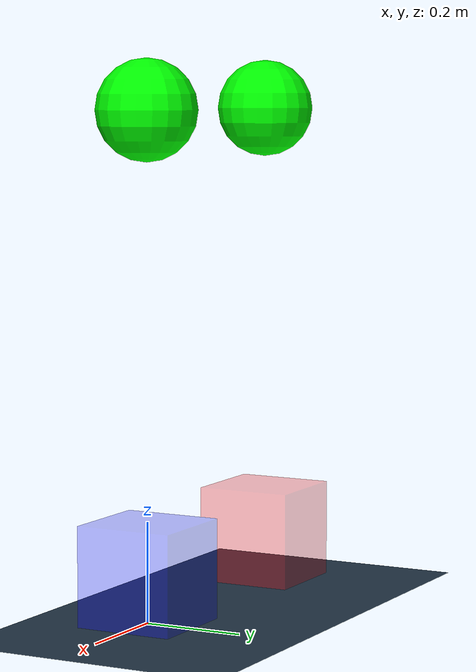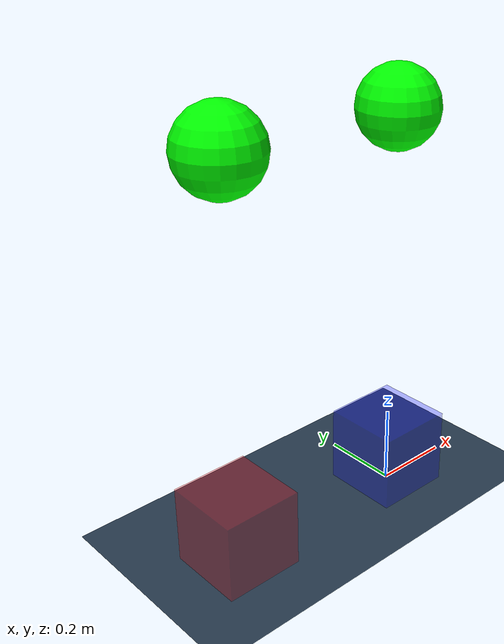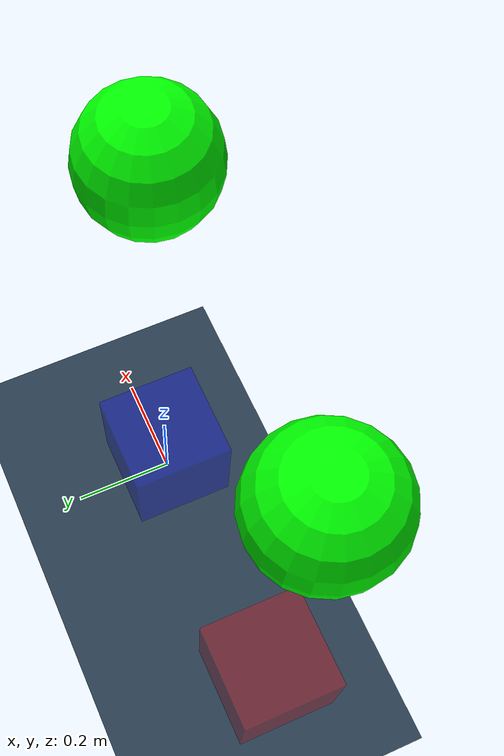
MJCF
<mujoco>
    <option gravity="0 0 -9.81" integrator="Euler" timestep="0.001"/>

    <asset>
      <texture name="plane" type="2d" builtin="checker" rgb1=".2 .3 .4" rgb2=".1 0.15 0.2" width="256" height="256" mark="cross" markrgb=".8 .8 .8" />
      <material name="plane" reflectance="0.3" texture="plane" texrepeat="1 1" texuniform="true" />
    </asset>

    <worldbody>
        <light directional="true" diffuse=".2 .2 .2" specular="0 0 0" pos="0 1 5" dir="0 -1 -1" castshadow="false"/>
        <light directional="false" diffuse=".8 .8 .8" specular="0.3 0.3 0.3" pos="0 -1 4" dir="0 0 -1" />
        <light directional="true" diffuse="0 0 0" specular=".7 .7 .7" pos="0 3 3" dir="0 -3 -3" />
        <geom name="floor" pos="0 0 -.0" group="1" size="0 0 .1" type="plane" material="plane" condim="3" />

    <!-- 충돌 발생: box_1과 ball_1 -->
        <body name="box_1" pos="-0.5 0 0.1">
            <geom type="box" size="0.1 0.1 0.1" rgba="1 0 0 0.3" contype="1" conaffinity="1"/>
            <joint type="hinge" axis="0 0 1"/>
        </body>

        <body name="ball_1" pos="-0.5 0 1">
            <geom type="sphere" size="0.1" rgba="0 1 0 1" contype="1" conaffinity="1"/>
            <joint type="free"/>
        </body>

    <!-- 충돌 무시: box_2와 ball_2 -->
        <body name="box_2" pos="0 0 0.1">
            <geom type="box" size="0.1 0.1 0.1" rgba="0 0 1 0.3" contype="1" conaffinity="2"/>
            <joint type="slide" axis="1 0 0"/>
            <joint type="slide" axis="0 1 0"/>
        </body>

        <body name="ball_2" pos="0 0 1">
            <geom type="sphere" size="0.1" rgba="0 1 0 1" contype="1" conaffinity="4"/>
            <joint type="free"/>
        </body>
    </worldbody>
</mujoco>
